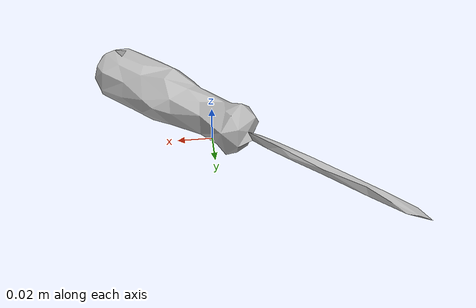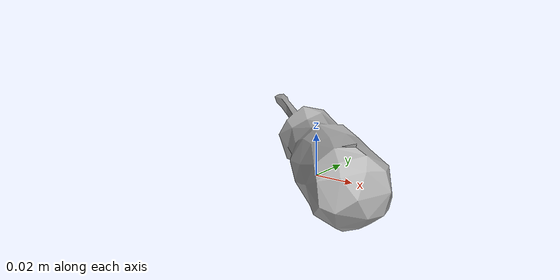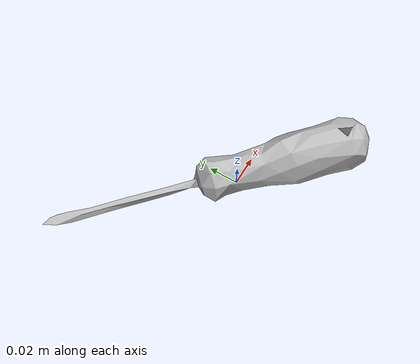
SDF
<?xml version='1.0'?>
<sdf version="1.4">
  <model name="044_flat_screwdriver">
    <static>false</static>
    <link name="link">
      <inertial>
        <pose>0.009917511461318092 -0.009838563049035453 0.01548501647271395 1.8978723258042711 -1.4482906381151108 -2.6630553823838117</pose>
        <mass>0.011338475684744373</mass>
        <inertia>
          <ixx>2.4507604279994093e-05</ixx>
          <ixy>1.8027824640053518e-21</ixy>
          <ixz>3.749650466282965e-22</ixz>
          <iyy>2.4499557117269913e-05</iyy>
          <iyz>-3.9668193539693095e-21</iyz>
          <izz>1.3059433014544058e-06</izz>
        </inertia>
      </inertial>
      <collision name="collision">
        <geometry>
          <mesh>
            <!-- Use a downsampled mesh for collisions -->
            <uri>model:///044_flat_screwdriver/044_flat_screwdriver_250_collision.stl</uri>
	        </mesh>
        </geometry>
        <surface>
      </surface>
      </collision>
      <visual name="visual">
        <geometry>
          <mesh>
            <uri>model:///044_flat_screwdriver/textured.obj</uri>
	        </mesh>
        </geometry>
        <material>
          <script>
            <uri>model:///044_flat_screwdriver/044_flat_screwdriver.material</uri>
            <name>044_flat_screwdriver</name>
          </script>
        </material>
      </visual>
    </link>
  </model>
</sdf>
